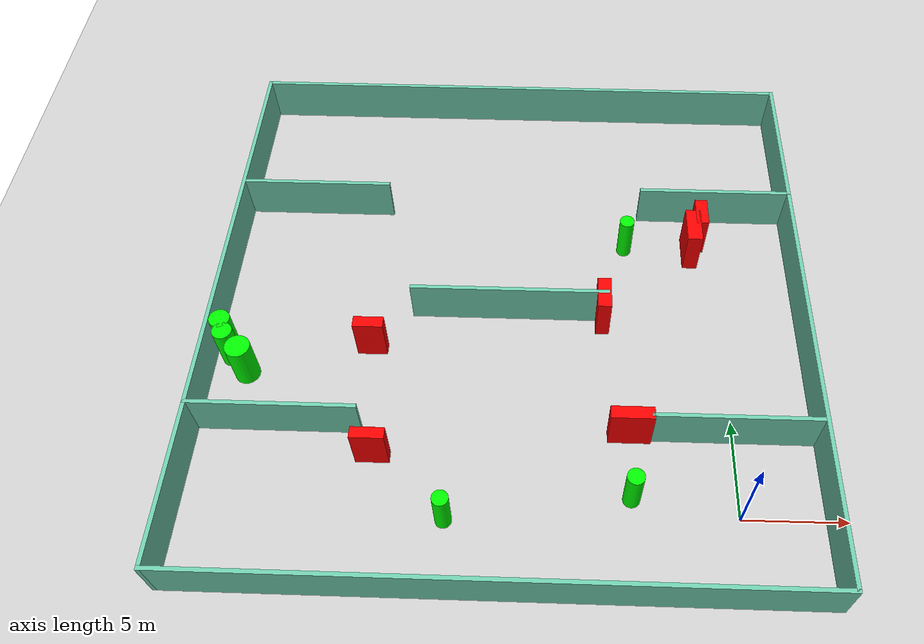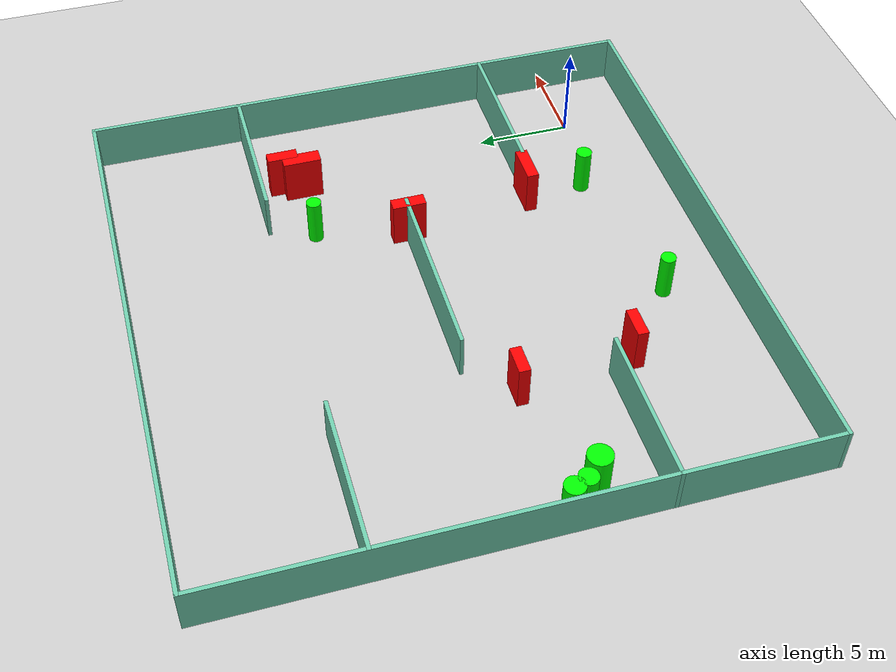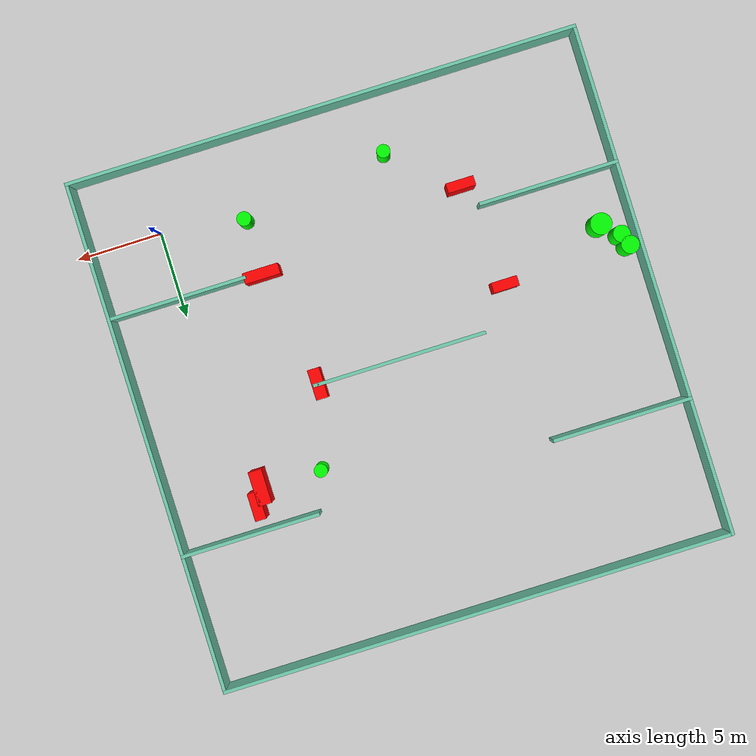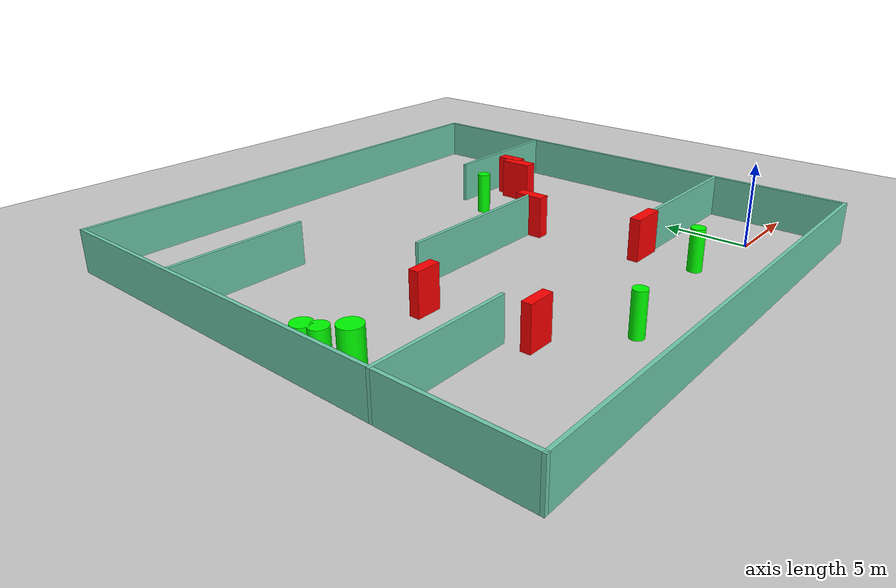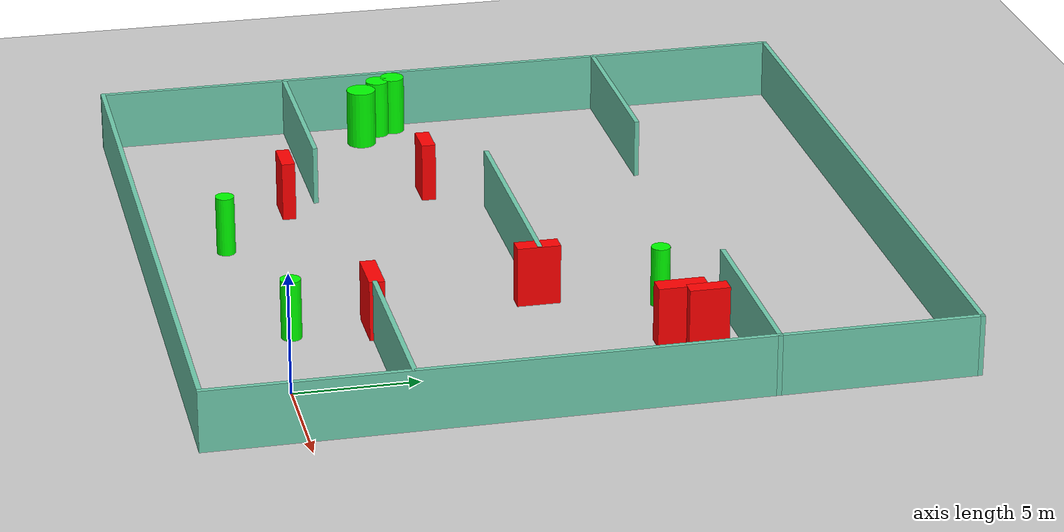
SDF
<sdf version="1.7">
 <world name="default">
  <light name="sun" type="directional">
   <pose>0 0 10 0 -0 0</pose>
   <diffuse>0.8 0.8 0.8 1</diffuse>
   <specular>0.2 0.2 0.2 1</specular>
   <attenuation>
    <range>1000</range>
    <constant>0.9</constant>
    <linear>0.01</linear>
    <quadratic>0.001</quadratic>
   </attenuation>
   <direction>-0.5 0.1 -0.9</direction>
   <spot><inner_angle>0</inner_angle><outer_angle>0</outer_angle><falloff>0</falloff></spot>
  </light>
  <model name="ground_plane">
   <static>1</static>
   <link name="link">
    <collision name="collision">
     <geometry><plane><normal>0 0 1</normal><size>100 100</size></plane></geometry>
     <surface>
      <contact><collide_bitmask>65535</collide_bitmask></contact>
      <friction><ode><mu>100</mu><mu2>50</mu2></ode></friction>
     </surface>
    </collision>
    <visual name="visual">
     <cast_shadows>0</cast_shadows>
     <geometry><plane><normal>0 0 1</normal><size>100 100</size></plane></geometry>
     <material>
      <script><uri>file://media/materials/scripts/gazebo.material</uri><name>Gazebo/Grey</name></script>
     </material>
    </visual>
   </link>
  </model>
  <gravity>0 0 -9.8</gravity>
  <magnetic_field>6e-06 2.3e-05 -4.2e-05</magnetic_field>
  <atmosphere type="adiabatic"/>
  <physics type="ode">
   <max_step_size>0.001</max_step_size>
   <real_time_factor>1</real_time_factor>
   <real_time_update_rate>1000</real_time_update_rate>
  </physics>
  <scene><ambient>0.4 0.4 0.4 1</ambient><background>0.7 0.7 0.7 1</background><shadows>1</shadows></scene>
  <spherical_coordinates>
   <surface_model>EARTH_WGS84</surface_model>
   <latitude_deg>0</latitude_deg>
   <longitude_deg>0</longitude_deg>
   <elevation>0</elevation>
   <heading_deg>0</heading_deg>
  </spherical_coordinates>
  <model name="my_base_walls">
   <link name="Wall_10">
    <collision name="Wall_10_Collision">
     <geometry><box><size>8.2 0.2 2.5</size></box></geometry>
     <pose>0 0 1.25 0 -0 0</pose>
    </collision>
    <visual name="Wall_10_Visual">
     <pose>0 0 1.25 0 -0 0</pose>
     <geometry><box><size>8.2 0.2 2.5</size></box></geometry>
     <material>
      <script><uri>file://media/materials/scripts/gazebo.material</uri><name>Gazebo/Grey</name></script>
      <ambient>0.435294 0.796078 0.67451 1</ambient>
     </material>
     <meta><layer>0</layer></meta>
    </visual>
    <pose>-11 -7 0 0 -0 0</pose>
   </link>
   <link name="Wall_12">
    <collision name="Wall_12_Collision">
     <geometry><box><size>8.2 0.2 2.5</size></box></geometry>
     <pose>0 0 1.25 0 -0 0</pose>
    </collision>
    <visual name="Wall_12_Visual">
     <pose>0 0 1.25 0 -0 0</pose>
     <geometry><box><size>8.2 0.2 2.5</size></box></geometry>
     <material>
      <script><uri>file://media/materials/scripts/gazebo.material</uri><name>Gazebo/Grey</name></script>
      <ambient>0.435294 0.796078 0.67451 1</ambient>
     </material>
     <meta><layer>0</layer></meta>
    </visual>
    <pose>-11 7 0 0 -0 0</pose>
   </link>
   <link name="Wall_14">
    <collision name="Wall_14_Collision">
     <geometry><box><size>8.2 0.2 2.5</size></box></geometry>
     <pose>0 0 1.25 0 -0 0</pose>
    </collision>
    <visual name="Wall_14_Visual">
     <pose>0 0 1.25 0 -0 0</pose>
     <geometry><box><size>8.2 0.2 2.5</size></box></geometry>
     <material>
      <script><uri>file://media/materials/scripts/gazebo.material</uri><name>Gazebo/Grey</name></script>
      <ambient>0.435294 0.796078 0.67451 1</ambient>
     </material>
     <meta><layer>0</layer></meta>
    </visual>
    <pose>11 7 0 0 -0 3.14159</pose>
   </link>
   <link name="Wall_16">
    <collision name="Wall_16_Collision">
     <geometry><box><size>10.2 0.2 2.5</size></box></geometry>
     <pose>0 0 1.25 0 -0 0</pose>
    </collision>
    <visual name="Wall_16_Visual">
     <pose>0 0 1.25 0 -0 0</pose>
     <geometry><box><size>10.2 0.2 2.5</size></box></geometry>
     <material>
      <script><uri>file://media/materials/scripts/gazebo.material</uri><name>Gazebo/Grey</name></script>
      <ambient>0.435294 0.796078 0.67451 1</ambient>
     </material>
     <meta><layer>0</layer></meta>
    </visual>
    <pose>0 0 0 0 -0 3.14159</pose>
   </link>
   <link name="Wall_2">
    <collision name="Wall_2_Collision">
     <geometry><box><size>30.2 0.2 2.5</size></box></geometry>
     <pose>0 0 1.25 0 -0 0</pose>
    </collision>
    <visual name="Wall_2_Visual">
     <pose>0 0 1.25 0 -0 0</pose>
     <geometry><box><size>30.2 0.2 2.5</size></box></geometry>
     <material>
      <script><uri>file://media/materials/scripts/gazebo.material</uri><name>Gazebo/Grey</name></script>
      <ambient>0.435294 0.796078 0.67451 1</ambient>
     </material>
     <meta><layer>0</layer></meta>
    </visual>
    <pose>0 -15 0 0 -0 3.14159</pose>
   </link>
   <link name="Wall_3">
    <collision name="Wall_3_Collision">
     <geometry><box><size>30.2 0.2 2.5</size></box></geometry>
     <pose>0 0 1.25 0 -0 0</pose>
    </collision>
    <visual name="Wall_3_Visual">
     <pose>0 0 1.25 0 -0 0</pose>
     <geometry><box><size>30.2 0.2 2.5</size></box></geometry>
     <material>
      <script><uri>file://media/materials/scripts/gazebo.material</uri><name>Gazebo/Grey</name></script>
      <ambient>0.435294 0.796078 0.67451 1</ambient>
     </material>
     <meta><layer>0</layer></meta>
    </visual>
    <pose>-15 0 0 0 -0 1.5708</pose>
   </link>
   <link name="Wall_4">
    <collision name="Wall_4_Collision">
     <geometry><box><size>30.2 0.2 2.5</size></box></geometry>
     <pose>0 0 1.25 0 -0 0</pose>
    </collision>
    <visual name="Wall_4_Visual">
     <pose>0 0 1.25 0 -0 0</pose>
     <geometry><box><size>30.2 0.2 2.5</size></box></geometry>
     <material>
      <script><uri>file://media/materials/scripts/gazebo.material</uri><name>Gazebo/Grey</name></script>
      <ambient>0.435294 0.796078 0.67451 1</ambient>
     </material>
     <meta><layer>0</layer></meta>
    </visual>
    <pose>0 15 0 0 -0 0</pose>
   </link>
   <link name="Wall_6">
    <collision name="Wall_6_Collision">
     <geometry><box><size>30.2 0.2 2.5</size></box></geometry>
     <pose>0 0 1.25 0 -0 0</pose>
    </collision>
    <visual name="Wall_6_Visual">
     <pose>0 0 1.25 0 -0 0</pose>
     <geometry><box><size>30.2 0.2 2.5</size></box></geometry>
     <material>
      <script><uri>file://media/materials/scripts/gazebo.material</uri><name>Gazebo/Grey</name></script>
      <ambient>0.435294 0.796078 0.67451 1</ambient>
     </material>
     <meta><layer>0</layer></meta>
    </visual>
    <pose>15 0 0 0 -0 1.5708</pose>
   </link>
   <link name="Wall_8">
    <collision name="Wall_8_Collision">
     <geometry><box><size>8.2 0.2 2.5</size></box></geometry>
     <pose>0 0 1.25 0 -0 0</pose>
    </collision>
    <visual name="Wall_8_Visual">
     <pose>0 0 1.25 0 -0 0</pose>
     <geometry><box><size>8.2 0.2 2.5</size></box></geometry>
     <material>
      <script><uri>file://media/materials/scripts/gazebo.material</uri><name>Gazebo/Grey</name></script>
      <ambient>0.435294 0.796078 0.67451 1</ambient>
     </material>
     <meta><layer>0</layer></meta>
    </visual>
    <pose>11 -7 0 0 -0 3.14159</pose>
   </link>
   <static>1</static>
   <pose>-11 11 0 0 -0 0</pose>
  </model>
  <model name="cylinder1">
   <static>1</static>
   <link name="link">
    <inertial>
     <mass>1</mass>
     <inertia><ixx>0.5</ixx><ixy>0</ixy><ixz>0</ixz><iyy>0.5</iyy><iyz>0</iyz><izz>1</izz></inertia>
    </inertial>
    <collision name="collision">
     <geometry><cylinder><radius>0.5250107642965384</radius><length>2.5</length></cylinder></geometry>
    </collision>
    <visual name="visual">
     <geometry><cylinder><radius>0.5250107642965384</radius><length>2.5</length></cylinder></geometry>
     <material>
      <ambient>0 1 0 1</ambient>
      <diffuse>0 1 0 1</diffuse>
      <specular>0.1 0.1 0.1 1</specular>
      <emissive>0 0 0 0</emissive>
     </material>
    </visual>
   </link>
   <pose>-25.35778401253596 8.709437359117295 1.25 0 0 0</pose>
  </model>
  <model name="cylinder2">
   <static>1</static>
   <link name="link">
    <inertial>
     <mass>1</mass>
     <inertia><ixx>0.5</ixx><ixy>0</ixy><ixz>0</ixz><iyy>0.5</iyy><iyz>0</iyz><izz>1</izz></inertia>
    </inertial>
    <collision name="collision">
     <geometry><cylinder><radius>0.6265133159859564</radius><length>2.5</length></cylinder></geometry>
    </collision>
    <visual name="visual">
     <geometry><cylinder><radius>0.6265133159859564</radius><length>2.5</length></cylinder></geometry>
     <material>
      <ambient>0 1 0 1</ambient>
      <diffuse>0 1 0 1</diffuse>
      <specular>0.1 0.1 0.1 1</specular>
      <emissive>0 0 0 0</emissive>
     </material>
    </visual>
   </link>
   <pose>-24.13220773532833 7.09901554987921 1.25 0 0 0</pose>
  </model>
  <model name="cylinder3">
   <static>1</static>
   <link name="link">
    <inertial>
     <mass>1</mass>
     <inertia><ixx>0.5</ixx><ixy>0</ixy><ixz>0</ixz><iyy>0.5</iyy><iyz>0</iyz><izz>1</izz></inertia>
    </inertial>
    <collision name="collision">
     <geometry><cylinder><radius>0.38839799883759313</radius><length>2.5</length></cylinder></geometry>
    </collision>
    <visual name="visual">
     <geometry><cylinder><radius>0.38839799883759313</radius><length>2.5</length></cylinder></geometry>
     <material>
      <ambient>0 1 0 1</ambient>
      <diffuse>0 1 0 1</diffuse>
      <specular>0.1 0.1 0.1 1</specular>
      <emissive>0 0 0 0</emissive>
     </material>
    </visual>
   </link>
   <pose>-4.893029141495212 15.68425662138603 1.25 0 0 0</pose>
  </model>
  <model name="cylinder4">
   <static>1</static>
   <link name="link">
    <inertial>
     <mass>1</mass>
     <inertia><ixx>0.5</ixx><ixy>0</ixy><ixz>0</ixz><iyy>0.5</iyy><iyz>0</iyz><izz>1</izz></inertia>
    </inertial>
    <collision name="collision">
     <geometry><cylinder><radius>0.3912037980669322</radius><length>2.5</length></cylinder></geometry>
    </collision>
    <visual name="visual">
     <geometry><cylinder><radius>0.3912037980669322</radius><length>2.5</length></cylinder></geometry>
     <material>
      <ambient>0 1 0 1</ambient>
      <diffuse>0 1 0 1</diffuse>
      <specular>0.1 0.1 0.1 1</specular>
      <emissive>0 0 0 0</emissive>
     </material>
    </visual>
   </link>
   <pose>-13.625083125673418 -0.4684207008789687 1.25 0 0 0</pose>
  </model>
  <model name="cylinder5">
   <static>1</static>
   <link name="link">
    <inertial>
     <mass>1</mass>
     <inertia><ixx>0.5</ixx><ixy>0</ixy><ixz>0</ixz><iyy>0.5</iyy><iyz>0</iyz><izz>1</izz></inertia>
    </inertial>
    <collision name="collision">
     <geometry><cylinder><radius>0.41721003394801204</radius><length>2.5</length></cylinder></geometry>
    </collision>
    <visual name="visual">
     <geometry><cylinder><radius>0.41721003394801204</radius><length>2.5</length></cylinder></geometry>
     <material>
      <ambient>0 1 0 1</ambient>
      <diffuse>0 1 0 1</diffuse>
      <specular>0.1 0.1 0.1 1</specular>
      <emissive>0 0 0 0</emissive>
     </material>
    </visual>
   </link>
   <pose>-4.984006027495967 0.8330208770720069 1.25 0 0 0</pose>
  </model>
  <model name="cylinder6">
   <static>1</static>
   <link name="link">
    <inertial>
     <mass>1</mass>
     <inertia><ixx>0.5</ixx><ixy>0</ixy><ixz>0</ixz><iyy>0.5</iyy><iyz>0</iyz><izz>1</izz></inertia>
    </inertial>
    <collision name="collision">
     <geometry><cylinder><radius>0.4955084348262837</radius><length>2.5</length></cylinder></geometry>
    </collision>
    <visual name="visual">
     <geometry><cylinder><radius>0.4955084348262837</radius><length>2.5</length></cylinder></geometry>
     <material>
      <ambient>0 1 0 1</ambient>
      <diffuse>0 1 0 1</diffuse>
      <specular>0.1 0.1 0.1 1</specular>
      <emissive>0 0 0 0</emissive>
     </material>
    </visual>
   </link>
   <pose>-25.07315466446331 7.980178280165902 1.25 0 0 0</pose>
  </model>
  <model name="box1">
   <static>1</static>
   <link name="link">
    <inertial>
     <mass>1</mass>
     <inertia><ixx>0.083</ixx><ixy>0</ixy><ixz>0</ixz><iyy>0.083</iyy><iyz>0</iyz><izz>0.083</izz></inertia>
    </inertial>
    <collision name="collision">
     <geometry><box><size>1.628171025063057 0.5640704184417408 2.5</size></box></geometry>
    </collision>
    <visual name="visual">
     <geometry><box><size>1.628171025063057 0.5640704184417408 2.5</size></box></geometry>
     <material>
      <ambient>1 0 0 1</ambient>
      <diffuse>1 0 0 1</diffuse>
      <specular>0.1 0.1 0.1 1</specular>
      <emissive>0 0 0 0</emissive>
     </material>
    </visual>
    <sensor name="my_contact" type="contact">
     <contact><collision>box_collision</collision><topic>__default_topic__</topic></contact>
    </sensor>
   </link>
   <pose>-17.23437522882813 2.62347987183035 1.25 0 0 0</pose>
  </model>
  <model name="box2">
   <static>1</static>
   <link name="link">
    <inertial>
     <mass>1</mass>
     <inertia><ixx>0.083</ixx><ixy>0</ixy><ixz>0</ixz><iyy>0.083</iyy><iyz>0</iyz><izz>0.083</izz></inertia>
    </inertial>
    <collision name="collision">
     <geometry><box><size>2.0816186893145865 0.6320136547891761 2.5</size></box></geometry>
    </collision>
    <visual name="visual">
     <geometry><box><size>2.0816186893145865 0.6320136547891761 2.5</size></box></geometry>
     <material>
      <ambient>1 0 0 1</ambient>
      <diffuse>1 0 0 1</diffuse>
      <specular>0.1 0.1 0.1 1</specular>
      <emissive>0 0 0 0</emissive>
     </material>
    </visual>
    <sensor name="my_contact" type="contact">
     <contact><collision>box_collision</collision><topic>__default_topic__</topic></contact>
    </sensor>
   </link>
   <pose>-5.000888313905847 4.070245791100099 1.25 0 0 0</pose>
  </model>
  <model name="box3">
   <static>1</static>
   <link name="link">
    <inertial>
     <mass>1</mass>
     <inertia><ixx>0.083</ixx><ixy>0</ixy><ixz>0</ixz><iyy>0.083</iyy><iyz>0</iyz><izz>0.083</izz></inertia>
    </inertial>
    <collision name="collision">
     <geometry><box><size>0.696042643023074 1.7723721005690687 2.5</size></box></geometry>
    </collision>
    <visual name="visual">
     <geometry><box><size>0.696042643023074 1.7723721005690687 2.5</size></box></geometry>
     <material>
      <ambient>1 0 0 1</ambient>
      <diffuse>1 0 0 1</diffuse>
      <specular>0.1 0.1 0.1 1</specular>
      <emissive>0 0 0 0</emissive>
     </material>
    </visual>
    <sensor name="my_contact" type="contact">
     <contact><collision>box_collision</collision><topic>__default_topic__</topic></contact>
    </sensor>
   </link>
   <pose>-6.179764308233892 10.953000310224187 1.25 0 0 0</pose>
  </model>
  <model name="box4">
   <static>1</static>
   <link name="link">
    <inertial>
     <mass>1</mass>
     <inertia><ixx>0.083</ixx><ixy>0</ixy><ixz>0</ixz><iyy>0.083</iyy><iyz>0</iyz><izz>0.083</izz></inertia>
    </inertial>
    <collision name="collision">
     <geometry><box><size>0.7876959579094012 2.013432737156239 2.5</size></box></geometry>
    </collision>
    <visual name="visual">
     <geometry><box><size>0.7876959579094012 2.013432737156239 2.5</size></box></geometry>
     <material>
      <ambient>1 0 0 1</ambient>
      <diffuse>1 0 0 1</diffuse>
      <specular>0.1 0.1 0.1 1</specular>
      <emissive>0 0 0 0</emissive>
     </material>
    </visual>
    <sensor name="my_contact" type="contact">
     <contact><collision>box_collision</collision><topic>__default_topic__</topic></contact>
    </sensor>
   </link>
   <pose>-1.3235536462599988 15.58128628518536 1.25 0 0 0</pose>
  </model>
  <model name="box5">
   <static>1</static>
   <link name="link">
    <inertial>
     <mass>1</mass>
     <inertia><ixx>0.083</ixx><ixy>0</ixy><ixz>0</ixz><iyy>0.083</iyy><iyz>0</iyz><izz>0.083</izz></inertia>
    </inertial>
    <collision name="collision">
     <geometry><box><size>1.5142159727685587 0.5950406398998785 2.5</size></box></geometry>
    </collision>
    <visual name="visual">
     <geometry><box><size>1.5142159727685587 0.5950406398998785 2.5</size></box></geometry>
     <material>
      <ambient>1 0 0 1</ambient>
      <diffuse>1 0 0 1</diffuse>
      <specular>0.1 0.1 0.1 1</specular>
      <emissive>0 0 0 0</emissive>
     </material>
    </visual>
    <sensor name="my_contact" type="contact">
     <contact><collision>box_collision</collision><topic>__default_topic__</topic></contact>
    </sensor>
   </link>
   <pose>-17.954017136664888 8.747445965420747 1.25 0 0 0</pose>
  </model>
  <model name="box6">
   <static>1</static>
   <link name="link">
    <inertial>
     <mass>1</mass>
     <inertia><ixx>0.083</ixx><ixy>0</ixy><ixz>0</ixz><iyy>0.083</iyy><iyz>0</iyz><izz>0.083</izz></inertia>
    </inertial>
    <collision name="collision">
     <geometry><box><size>0.6477981146932246 1.628996919081786 2.5</size></box></geometry>
    </collision>
    <visual name="visual">
     <geometry><box><size>0.6477981146932246 1.628996919081786 2.5</size></box></geometry>
     <material>
      <ambient>1 0 0 1</ambient>
      <diffuse>1 0 0 1</diffuse>
      <specular>0.1 0.1 0.1 1</specular>
      <emissive>0 0 0 0</emissive>
     </material>
    </visual>
    <sensor name="my_contact" type="contact">
     <contact><collision>box_collision</collision><topic>__default_topic__</topic></contact>
    </sensor>
   </link>
   <pose>-0.839268273017904 16.52673180310699 1.25 0 0 0</pose>
  </model>
 </world>
</sdf>
